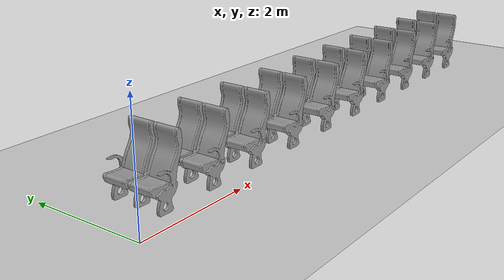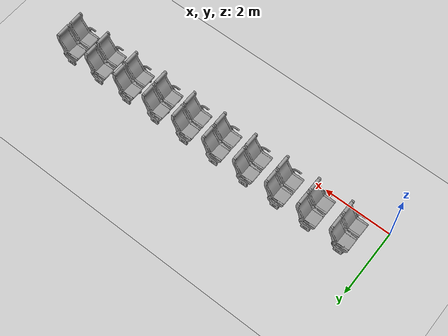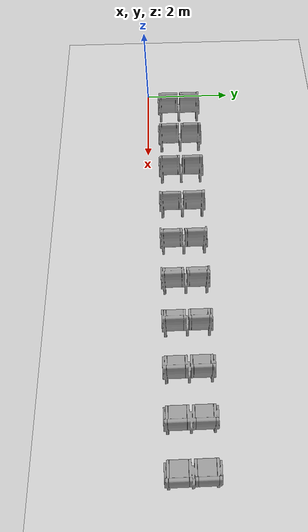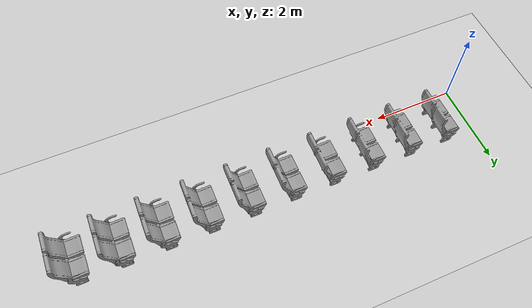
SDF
<sdf version="1.7">
 <world name="default">
  <model name="ground_plane">
   <static>1</static>
   <link name="link">
    <collision name="collision">
     <geometry><plane><normal>0 0 1</normal><size>100 100</size></plane></geometry>
     <surface><friction><ode><mu>100</mu><mu2>50</mu2></ode></friction></surface>
    </collision>
    <visual name="visual">
     <cast_shadows>0</cast_shadows>
     <geometry><plane><normal>0 0 1</normal><size>100 100</size></plane></geometry>
     <material>
      <script><uri>file://media/materials/scripts/gazebo.material</uri><name>Gazebo/Grey</name></script>
     </material>
    </visual>
   </link>
  </model>
  <model name="seat_10_2">
   <model name="seat">
    <link name="link_0">
     <inertial>
      <mass>1</mass>
      <inertia>
       <ixx>0.166667</ixx>
       <ixy>0</ixy>
       <ixz>0</ixz>
       <iyy>0.166667</iyy>
       <iyz>0</iyz>
       <izz>0.166667</izz>
      </inertia>
     </inertial>
     <visual name="visual">
      <pose>-0.3 -0.5 0 0 -0 0</pose>
      <geometry><mesh><uri>model://seat1/meshes/seat1.stl</uri><scale>0.001 0.001 0.001</scale></mesh></geometry>
      <material>
       <lighting>1</lighting>
       <script><uri>file://media/materials/scripts/gazebo.material</uri><name>Gazebo/Grey</name></script>
       <shader type="pixel"><normal_map>__default__</normal_map></shader>
       <ambient>0.3 0.3 0.3 1</ambient>
       <diffuse>0.7 0.7 0.7 1</diffuse>
       <specular>0.01 0.01 0.01 1</specular>
       <emissive>0 0 0 1</emissive>
      </material>
     </visual>
     <collision name="collision">
      <pose>-0.3 -0.5 0 0 -0 0</pose>
      <geometry><mesh><uri>model://seat1/meshes/seat1.stl</uri><scale>0.001 0.001 0.001</scale></mesh></geometry>
      <surface>
       <friction>
        <ode><mu>10000</mu><mu2>10000</mu2><fdir1>0 0 0</fdir1><slip1>0</slip1><slip2>0</slip2></ode>
        <torsional>
         <coefficient>1</coefficient>
         <patch_radius>0</patch_radius>
         <surface_radius>0</surface_radius>
         <use_patch_radius>1</use_patch_radius>
         <ode><slip>0</slip></ode>
        </torsional>
       </friction>
       <bounce><restitution_coefficient>0</restitution_coefficient><threshold>1e+06</threshold></bounce>
       <contact>
        <collide_without_contact>0</collide_without_contact>
        <collide_without_contact_bitmask>1</collide_without_contact_bitmask>
        <collide_bitmask>1</collide_bitmask>
        <ode>
         <soft_cfm>0</soft_cfm>
         <soft_erp>0.2</soft_erp>
         <kp>1e+13</kp>
         <kd>1</kd>
         <max_vel>0.01</max_vel>
         <min_depth>0</min_depth>
        </ode>
        <bullet>
         <split_impulse>1</split_impulse>
         <split_impulse_penetration_threshold>-0.01</split_impulse_penetration_threshold>
         <soft_cfm>0</soft_cfm>
         <soft_erp>0.2</soft_erp>
         <kp>1e+13</kp>
         <kd>1</kd>
        </bullet>
       </contact>
      </surface>
     </collision>
    </link>
    <static>0</static>
    <pose>-4.49906 0.001451 0 0 -0 0</pose>
   </model>
   <model name="seat_0">
    <link name="link_0">
     <inertial>
      <mass>1</mass>
      <inertia>
       <ixx>0.166667</ixx>
       <ixy>0</ixy>
       <ixz>0</ixz>
       <iyy>0.166667</iyy>
       <iyz>0</iyz>
       <izz>0.166667</izz>
      </inertia>
     </inertial>
     <visual name="visual">
      <pose>-0.3 -0.5 0 0 -0 0</pose>
      <geometry><mesh><uri>model://seat1/meshes/seat1.stl</uri><scale>0.001 0.001 0.001</scale></mesh></geometry>
      <material>
       <lighting>1</lighting>
       <script><uri>file://media/materials/scripts/gazebo.material</uri><name>Gazebo/Grey</name></script>
       <shader type="pixel"><normal_map>__default__</normal_map></shader>
       <ambient>0.3 0.3 0.3 1</ambient>
       <diffuse>0.7 0.7 0.7 1</diffuse>
       <specular>0.01 0.01 0.01 1</specular>
       <emissive>0 0 0 1</emissive>
      </material>
     </visual>
     <collision name="collision">
      <pose>-0.3 -0.5 0 0 -0 0</pose>
      <geometry><mesh><uri>model://seat1/meshes/seat1.stl</uri><scale>0.001 0.001 0.001</scale></mesh></geometry>
      <surface>
       <friction>
        <ode><mu>10000</mu><mu2>10000</mu2><fdir1>0 0 0</fdir1><slip1>0</slip1><slip2>0</slip2></ode>
        <torsional>
         <coefficient>1</coefficient>
         <patch_radius>0</patch_radius>
         <surface_radius>0</surface_radius>
         <use_patch_radius>1</use_patch_radius>
         <ode><slip>0</slip></ode>
        </torsional>
       </friction>
       <bounce><restitution_coefficient>0</restitution_coefficient><threshold>1e+06</threshold></bounce>
       <contact>
        <collide_without_contact>0</collide_without_contact>
        <collide_without_contact_bitmask>1</collide_without_contact_bitmask>
        <collide_bitmask>1</collide_bitmask>
        <ode>
         <soft_cfm>0</soft_cfm>
         <soft_erp>0.2</soft_erp>
         <kp>1e+13</kp>
         <kd>1</kd>
         <max_vel>0.01</max_vel>
         <min_depth>0</min_depth>
        </ode>
        <bullet>
         <split_impulse>1</split_impulse>
         <split_impulse_penetration_threshold>-0.01</split_impulse_penetration_threshold>
         <soft_cfm>0</soft_cfm>
         <soft_erp>0.2</soft_erp>
         <kp>1e+13</kp>
         <kd>1</kd>
        </bullet>
       </contact>
      </surface>
     </collision>
    </link>
    <static>0</static>
    <pose>-3.50213 0.000104 0 0 -0 0</pose>
   </model>
   <model name="seat_1">
    <link name="link_0">
     <inertial>
      <mass>1</mass>
      <inertia>
       <ixx>0.166667</ixx>
       <ixy>0</ixy>
       <ixz>0</ixz>
       <iyy>0.166667</iyy>
       <iyz>0</iyz>
       <izz>0.166667</izz>
      </inertia>
     </inertial>
     <visual name="visual">
      <pose>-0.3 -0.5 0 0 -0 0</pose>
      <geometry><mesh><uri>model://seat1/meshes/seat1.stl</uri><scale>0.001 0.001 0.001</scale></mesh></geometry>
      <material>
       <lighting>1</lighting>
       <script><uri>file://media/materials/scripts/gazebo.material</uri><name>Gazebo/Grey</name></script>
       <shader type="pixel"><normal_map>__default__</normal_map></shader>
       <ambient>0.3 0.3 0.3 1</ambient>
       <diffuse>0.7 0.7 0.7 1</diffuse>
       <specular>0.01 0.01 0.01 1</specular>
       <emissive>0 0 0 1</emissive>
      </material>
     </visual>
     <collision name="collision">
      <pose>-0.3 -0.5 0 0 -0 0</pose>
      <geometry><mesh><uri>model://seat1/meshes/seat1.stl</uri><scale>0.001 0.001 0.001</scale></mesh></geometry>
      <surface>
       <friction>
        <ode><mu>10000</mu><mu2>10000</mu2><fdir1>0 0 0</fdir1><slip1>0</slip1><slip2>0</slip2></ode>
        <torsional>
         <coefficient>1</coefficient>
         <patch_radius>0</patch_radius>
         <surface_radius>0</surface_radius>
         <use_patch_radius>1</use_patch_radius>
         <ode><slip>0</slip></ode>
        </torsional>
       </friction>
       <bounce><restitution_coefficient>0</restitution_coefficient><threshold>1e+06</threshold></bounce>
       <contact>
        <collide_without_contact>0</collide_without_contact>
        <collide_without_contact_bitmask>1</collide_without_contact_bitmask>
        <collide_bitmask>1</collide_bitmask>
        <ode>
         <soft_cfm>0</soft_cfm>
         <soft_erp>0.2</soft_erp>
         <kp>1e+13</kp>
         <kd>1</kd>
         <max_vel>0.01</max_vel>
         <min_depth>0</min_depth>
        </ode>
        <bullet>
         <split_impulse>1</split_impulse>
         <split_impulse_penetration_threshold>-0.01</split_impulse_penetration_threshold>
         <soft_cfm>0</soft_cfm>
         <soft_erp>0.2</soft_erp>
         <kp>1e+13</kp>
         <kd>1</kd>
        </bullet>
       </contact>
      </surface>
     </collision>
    </link>
    <static>0</static>
    <pose>-2.50166 -0.002281 0 0 -0 0</pose>
   </model>
   <model name="seat_2">
    <link name="link_0">
     <inertial>
      <mass>1</mass>
      <inertia>
       <ixx>0.166667</ixx>
       <ixy>0</ixy>
       <ixz>0</ixz>
       <iyy>0.166667</iyy>
       <iyz>0</iyz>
       <izz>0.166667</izz>
      </inertia>
     </inertial>
     <visual name="visual">
      <pose>-0.3 -0.5 0 0 -0 0</pose>
      <geometry><mesh><uri>model://seat1/meshes/seat1.stl</uri><scale>0.001 0.001 0.001</scale></mesh></geometry>
      <material>
       <lighting>1</lighting>
       <script><uri>file://media/materials/scripts/gazebo.material</uri><name>Gazebo/Grey</name></script>
       <shader type="pixel"><normal_map>__default__</normal_map></shader>
       <ambient>0.3 0.3 0.3 1</ambient>
       <diffuse>0.7 0.7 0.7 1</diffuse>
       <specular>0.01 0.01 0.01 1</specular>
       <emissive>0 0 0 1</emissive>
      </material>
     </visual>
     <collision name="collision">
      <pose>-0.3 -0.5 0 0 -0 0</pose>
      <geometry><mesh><uri>model://seat1/meshes/seat1.stl</uri><scale>0.001 0.001 0.001</scale></mesh></geometry>
      <surface>
       <friction>
        <ode><mu>10000</mu><mu2>10000</mu2><fdir1>0 0 0</fdir1><slip1>0</slip1><slip2>0</slip2></ode>
        <torsional>
         <coefficient>1</coefficient>
         <patch_radius>0</patch_radius>
         <surface_radius>0</surface_radius>
         <use_patch_radius>1</use_patch_radius>
         <ode><slip>0</slip></ode>
        </torsional>
       </friction>
       <bounce><restitution_coefficient>0</restitution_coefficient><threshold>1e+06</threshold></bounce>
       <contact>
        <collide_without_contact>0</collide_without_contact>
        <collide_without_contact_bitmask>1</collide_without_contact_bitmask>
        <collide_bitmask>1</collide_bitmask>
        <ode>
         <soft_cfm>0</soft_cfm>
         <soft_erp>0.2</soft_erp>
         <kp>1e+13</kp>
         <kd>1</kd>
         <max_vel>0.01</max_vel>
         <min_depth>0</min_depth>
        </ode>
        <bullet>
         <split_impulse>1</split_impulse>
         <split_impulse_penetration_threshold>-0.01</split_impulse_penetration_threshold>
         <soft_cfm>0</soft_cfm>
         <soft_erp>0.2</soft_erp>
         <kp>1e+13</kp>
         <kd>1</kd>
        </bullet>
       </contact>
      </surface>
     </collision>
    </link>
    <static>0</static>
    <pose>-1.49886 -0.001439 0 0 -0 0</pose>
   </model>
   <model name="seat_3">
    <link name="link_0">
     <inertial>
      <mass>1</mass>
      <inertia>
       <ixx>0.166667</ixx>
       <ixy>0</ixy>
       <ixz>0</ixz>
       <iyy>0.166667</iyy>
       <iyz>0</iyz>
       <izz>0.166667</izz>
      </inertia>
     </inertial>
     <visual name="visual">
      <pose>-0.3 -0.5 0 0 -0 0</pose>
      <geometry><mesh><uri>model://seat1/meshes/seat1.stl</uri><scale>0.001 0.001 0.001</scale></mesh></geometry>
      <material>
       <lighting>1</lighting>
       <script><uri>file://media/materials/scripts/gazebo.material</uri><name>Gazebo/Grey</name></script>
       <shader type="pixel"><normal_map>__default__</normal_map></shader>
       <ambient>0.3 0.3 0.3 1</ambient>
       <diffuse>0.7 0.7 0.7 1</diffuse>
       <specular>0.01 0.01 0.01 1</specular>
       <emissive>0 0 0 1</emissive>
      </material>
     </visual>
     <collision name="collision">
      <pose>-0.3 -0.5 0 0 -0 0</pose>
      <geometry><mesh><uri>model://seat1/meshes/seat1.stl</uri><scale>0.001 0.001 0.001</scale></mesh></geometry>
      <surface>
       <friction>
        <ode><mu>10000</mu><mu2>10000</mu2><fdir1>0 0 0</fdir1><slip1>0</slip1><slip2>0</slip2></ode>
        <torsional>
         <coefficient>1</coefficient>
         <patch_radius>0</patch_radius>
         <surface_radius>0</surface_radius>
         <use_patch_radius>1</use_patch_radius>
         <ode><slip>0</slip></ode>
        </torsional>
       </friction>
       <bounce><restitution_coefficient>0</restitution_coefficient><threshold>1e+06</threshold></bounce>
       <contact>
        <collide_without_contact>0</collide_without_contact>
        <collide_without_contact_bitmask>1</collide_without_contact_bitmask>
        <collide_bitmask>1</collide_bitmask>
        <ode>
         <soft_cfm>0</soft_cfm>
         <soft_erp>0.2</soft_erp>
         <kp>1e+13</kp>
         <kd>1</kd>
         <max_vel>0.01</max_vel>
         <min_depth>0</min_depth>
        </ode>
        <bullet>
         <split_impulse>1</split_impulse>
         <split_impulse_penetration_threshold>-0.01</split_impulse_penetration_threshold>
         <soft_cfm>0</soft_cfm>
         <soft_erp>0.2</soft_erp>
         <kp>1e+13</kp>
         <kd>1</kd>
        </bullet>
       </contact>
      </surface>
     </collision>
    </link>
    <static>0</static>
    <pose>-0.502503 -0.001106 0 0 -0 0</pose>
   </model>
   <model name="seat_4">
    <link name="link_0">
     <inertial>
      <mass>1</mass>
      <inertia>
       <ixx>0.166667</ixx>
       <ixy>0</ixy>
       <ixz>0</ixz>
       <iyy>0.166667</iyy>
       <iyz>0</iyz>
       <izz>0.166667</izz>
      </inertia>
     </inertial>
     <visual name="visual">
      <pose>-0.3 -0.5 0 0 -0 0</pose>
      <geometry><mesh><uri>model://seat1/meshes/seat1.stl</uri><scale>0.001 0.001 0.001</scale></mesh></geometry>
      <material>
       <lighting>1</lighting>
       <script><uri>file://media/materials/scripts/gazebo.material</uri><name>Gazebo/Grey</name></script>
       <shader type="pixel"><normal_map>__default__</normal_map></shader>
       <ambient>0.3 0.3 0.3 1</ambient>
       <diffuse>0.7 0.7 0.7 1</diffuse>
       <specular>0.01 0.01 0.01 1</specular>
       <emissive>0 0 0 1</emissive>
      </material>
     </visual>
     <collision name="collision">
      <pose>-0.3 -0.5 0 0 -0 0</pose>
      <geometry><mesh><uri>model://seat1/meshes/seat1.stl</uri><scale>0.001 0.001 0.001</scale></mesh></geometry>
      <surface>
       <friction>
        <ode><mu>10000</mu><mu2>10000</mu2><fdir1>0 0 0</fdir1><slip1>0</slip1><slip2>0</slip2></ode>
        <torsional>
         <coefficient>1</coefficient>
         <patch_radius>0</patch_radius>
         <surface_radius>0</surface_radius>
         <use_patch_radius>1</use_patch_radius>
         <ode><slip>0</slip></ode>
        </torsional>
       </friction>
       <bounce><restitution_coefficient>0</restitution_coefficient><threshold>1e+06</threshold></bounce>
       <contact>
        <collide_without_contact>0</collide_without_contact>
        <collide_without_contact_bitmask>1</collide_without_contact_bitmask>
        <collide_bitmask>1</collide_bitmask>
        <ode>
         <soft_cfm>0</soft_cfm>
         <soft_erp>0.2</soft_erp>
         <kp>1e+13</kp>
         <kd>1</kd>
         <max_vel>0.01</max_vel>
         <min_depth>0</min_depth>
        </ode>
        <bullet>
         <split_impulse>1</split_impulse>
         <split_impulse_penetration_threshold>-0.01</split_impulse_penetration_threshold>
         <soft_cfm>0</soft_cfm>
         <soft_erp>0.2</soft_erp>
         <kp>1e+13</kp>
         <kd>1</kd>
        </bullet>
       </contact>
      </surface>
     </collision>
    </link>
    <static>0</static>
    <pose>0.499248 0.004347 0 0 -0 0</pose>
   </model>
   <model name="seat_5">
    <link name="link_0">
     <inertial>
      <mass>1</mass>
      <inertia>
       <ixx>0.166667</ixx>
       <ixy>0</ixy>
       <ixz>0</ixz>
       <iyy>0.166667</iyy>
       <iyz>0</iyz>
       <izz>0.166667</izz>
      </inertia>
     </inertial>
     <visual name="visual">
      <pose>-0.3 -0.5 0 0 -0 0</pose>
      <geometry><mesh><uri>model://seat1/meshes/seat1.stl</uri><scale>0.001 0.001 0.001</scale></mesh></geometry>
      <material>
       <lighting>1</lighting>
       <script><uri>file://media/materials/scripts/gazebo.material</uri><name>Gazebo/Grey</name></script>
       <shader type="pixel"><normal_map>__default__</normal_map></shader>
       <ambient>0.3 0.3 0.3 1</ambient>
       <diffuse>0.7 0.7 0.7 1</diffuse>
       <specular>0.01 0.01 0.01 1</specular>
       <emissive>0 0 0 1</emissive>
      </material>
     </visual>
     <collision name="collision">
      <pose>-0.3 -0.5 0 0 -0 0</pose>
      <geometry><mesh><uri>model://seat1/meshes/seat1.stl</uri><scale>0.001 0.001 0.001</scale></mesh></geometry>
      <surface>
       <friction>
        <ode><mu>10000</mu><mu2>10000</mu2><fdir1>0 0 0</fdir1><slip1>0</slip1><slip2>0</slip2></ode>
        <torsional>
         <coefficient>1</coefficient>
         <patch_radius>0</patch_radius>
         <surface_radius>0</surface_radius>
         <use_patch_radius>1</use_patch_radius>
         <ode><slip>0</slip></ode>
        </torsional>
       </friction>
       <bounce><restitution_coefficient>0</restitution_coefficient><threshold>1e+06</threshold></bounce>
       <contact>
        <collide_without_contact>0</collide_without_contact>
        <collide_without_contact_bitmask>1</collide_without_contact_bitmask>
        <collide_bitmask>1</collide_bitmask>
        <ode>
         <soft_cfm>0</soft_cfm>
         <soft_erp>0.2</soft_erp>
         <kp>1e+13</kp>
         <kd>1</kd>
         <max_vel>0.01</max_vel>
         <min_depth>0</min_depth>
        </ode>
        <bullet>
         <split_impulse>1</split_impulse>
         <split_impulse_penetration_threshold>-0.01</split_impulse_penetration_threshold>
         <soft_cfm>0</soft_cfm>
         <soft_erp>0.2</soft_erp>
         <kp>1e+13</kp>
         <kd>1</kd>
        </bullet>
       </contact>
      </surface>
     </collision>
    </link>
    <static>0</static>
    <pose>1.49969 0.0043 0 0 -0 0</pose>
   </model>
   <model name="seat_6">
    <link name="link_0">
     <inertial>
      <mass>1</mass>
      <inertia>
       <ixx>0.166667</ixx>
       <ixy>0</ixy>
       <ixz>0</ixz>
       <iyy>0.166667</iyy>
       <iyz>0</iyz>
       <izz>0.166667</izz>
      </inertia>
     </inertial>
     <visual name="visual">
      <pose>-0.3 -0.5 0 0 -0 0</pose>
      <geometry><mesh><uri>model://seat1/meshes/seat1.stl</uri><scale>0.001 0.001 0.001</scale></mesh></geometry>
      <material>
       <lighting>1</lighting>
       <script><uri>file://media/materials/scripts/gazebo.material</uri><name>Gazebo/Grey</name></script>
       <shader type="pixel"><normal_map>__default__</normal_map></shader>
       <ambient>0.3 0.3 0.3 1</ambient>
       <diffuse>0.7 0.7 0.7 1</diffuse>
       <specular>0.01 0.01 0.01 1</specular>
       <emissive>0 0 0 1</emissive>
      </material>
     </visual>
     <collision name="collision">
      <pose>-0.3 -0.5 0 0 -0 0</pose>
      <geometry><mesh><uri>model://seat1/meshes/seat1.stl</uri><scale>0.001 0.001 0.001</scale></mesh></geometry>
      <surface>
       <friction>
        <ode><mu>10000</mu><mu2>10000</mu2><fdir1>0 0 0</fdir1><slip1>0</slip1><slip2>0</slip2></ode>
        <torsional>
         <coefficient>1</coefficient>
         <patch_radius>0</patch_radius>
         <surface_radius>0</surface_radius>
         <use_patch_radius>1</use_patch_radius>
         <ode><slip>0</slip></ode>
        </torsional>
       </friction>
       <bounce><restitution_coefficient>0</restitution_coefficient><threshold>1e+06</threshold></bounce>
       <contact>
        <collide_without_contact>0</collide_without_contact>
        <collide_without_contact_bitmask>1</collide_without_contact_bitmask>
        <collide_bitmask>1</collide_bitmask>
        <ode>
         <soft_cfm>0</soft_cfm>
         <soft_erp>0.2</soft_erp>
         <kp>1e+13</kp>
         <kd>1</kd>
         <max_vel>0.01</max_vel>
         <min_depth>0</min_depth>
        </ode>
        <bullet>
         <split_impulse>1</split_impulse>
         <split_impulse_penetration_threshold>-0.01</split_impulse_penetration_threshold>
         <soft_cfm>0</soft_cfm>
         <soft_erp>0.2</soft_erp>
         <kp>1e+13</kp>
         <kd>1</kd>
        </bullet>
       </contact>
      </surface>
     </collision>
    </link>
    <static>0</static>
    <pose>2.50992 -0.000349 0 0 -0 0</pose>
   </model>
   <model name="seat_7">
    <link name="link_0">
     <inertial>
      <mass>1</mass>
      <inertia>
       <ixx>0.166667</ixx>
       <ixy>0</ixy>
       <ixz>0</ixz>
       <iyy>0.166667</iyy>
       <iyz>0</iyz>
       <izz>0.166667</izz>
      </inertia>
     </inertial>
     <visual name="visual">
      <pose>-0.3 -0.5 0 0 -0 0</pose>
      <geometry><mesh><uri>model://seat1/meshes/seat1.stl</uri><scale>0.001 0.001 0.001</scale></mesh></geometry>
      <material>
       <lighting>1</lighting>
       <script><uri>file://media/materials/scripts/gazebo.material</uri><name>Gazebo/Grey</name></script>
       <shader type="pixel"><normal_map>__default__</normal_map></shader>
       <ambient>0.3 0.3 0.3 1</ambient>
       <diffuse>0.7 0.7 0.7 1</diffuse>
       <specular>0.01 0.01 0.01 1</specular>
       <emissive>0 0 0 1</emissive>
      </material>
     </visual>
     <collision name="collision">
      <pose>-0.3 -0.5 0 0 -0 0</pose>
      <geometry><mesh><uri>model://seat1/meshes/seat1.stl</uri><scale>0.001 0.001 0.001</scale></mesh></geometry>
      <surface>
       <friction>
        <ode><mu>10000</mu><mu2>10000</mu2><fdir1>0 0 0</fdir1><slip1>0</slip1><slip2>0</slip2></ode>
        <torsional>
         <coefficient>1</coefficient>
         <patch_radius>0</patch_radius>
         <surface_radius>0</surface_radius>
         <use_patch_radius>1</use_patch_radius>
         <ode><slip>0</slip></ode>
        </torsional>
       </friction>
       <bounce><restitution_coefficient>0</restitution_coefficient><threshold>1e+06</threshold></bounce>
       <contact>
        <collide_without_contact>0</collide_without_contact>
        <collide_without_contact_bitmask>1</collide_without_contact_bitmask>
        <collide_bitmask>1</collide_bitmask>
        <ode>
         <soft_cfm>0</soft_cfm>
         <soft_erp>0.2</soft_erp>
         <kp>1e+13</kp>
         <kd>1</kd>
         <max_vel>0.01</max_vel>
         <min_depth>0</min_depth>
        </ode>
        <bullet>
         <split_impulse>1</split_impulse>
         <split_impulse_penetration_threshold>-0.01</split_impulse_penetration_threshold>
         <soft_cfm>0</soft_cfm>
         <soft_erp>0.2</soft_erp>
         <kp>1e+13</kp>
         <kd>1</kd>
        </bullet>
       </contact>
      </surface>
     </collision>
    </link>
    <static>0</static>
    <pose>3.49546 -0.002775 0 0 -0 0</pose>
   </model>
   <model name="seat_8">
    <link name="link_0">
     <inertial>
      <mass>1</mass>
      <inertia>
       <ixx>0.166667</ixx>
       <ixy>0</ixy>
       <ixz>0</ixz>
       <iyy>0.166667</iyy>
       <iyz>0</iyz>
       <izz>0.166667</izz>
      </inertia>
     </inertial>
     <visual name="visual">
      <pose>-0.3 -0.5 0 0 -0 0</pose>
      <geometry><mesh><uri>model://seat1/meshes/seat1.stl</uri><scale>0.001 0.001 0.001</scale></mesh></geometry>
      <material>
       <lighting>1</lighting>
       <script><uri>file://media/materials/scripts/gazebo.material</uri><name>Gazebo/Grey</name></script>
       <shader type="pixel"><normal_map>__default__</normal_map></shader>
       <ambient>0.3 0.3 0.3 1</ambient>
       <diffuse>0.7 0.7 0.7 1</diffuse>
       <specular>0.01 0.01 0.01 1</specular>
       <emissive>0 0 0 1</emissive>
      </material>
     </visual>
     <collision name="collision">
      <pose>-0.3 -0.5 0 0 -0 0</pose>
      <geometry><mesh><uri>model://seat1/meshes/seat1.stl</uri><scale>0.001 0.001 0.001</scale></mesh></geometry>
      <surface>
       <friction>
        <ode><mu>10000</mu><mu2>10000</mu2><fdir1>0 0 0</fdir1><slip1>0</slip1><slip2>0</slip2></ode>
        <torsional>
         <coefficient>1</coefficient>
         <patch_radius>0</patch_radius>
         <surface_radius>0</surface_radius>
         <use_patch_radius>1</use_patch_radius>
         <ode><slip>0</slip></ode>
        </torsional>
       </friction>
       <bounce><restitution_coefficient>0</restitution_coefficient><threshold>1e+06</threshold></bounce>
       <contact>
        <collide_without_contact>0</collide_without_contact>
        <collide_without_contact_bitmask>1</collide_without_contact_bitmask>
        <collide_bitmask>1</collide_bitmask>
        <ode>
         <soft_cfm>0</soft_cfm>
         <soft_erp>0.2</soft_erp>
         <kp>1e+13</kp>
         <kd>1</kd>
         <max_vel>0.01</max_vel>
         <min_depth>0</min_depth>
        </ode>
        <bullet>
         <split_impulse>1</split_impulse>
         <split_impulse_penetration_threshold>-0.01</split_impulse_penetration_threshold>
         <soft_cfm>0</soft_cfm>
         <soft_erp>0.2</soft_erp>
         <kp>1e+13</kp>
         <kd>1</kd>
        </bullet>
       </contact>
      </surface>
     </collision>
    </link>
    <static>0</static>
    <pose>4.4999 -0.002251 0 0 -0 0</pose>
   </model>
   <static>0</static>
   <pose>5.3679 0.774775 0.000112 1e-05 -7e-06 -3.13896</pose>
  </model>
 </world>
</sdf>
